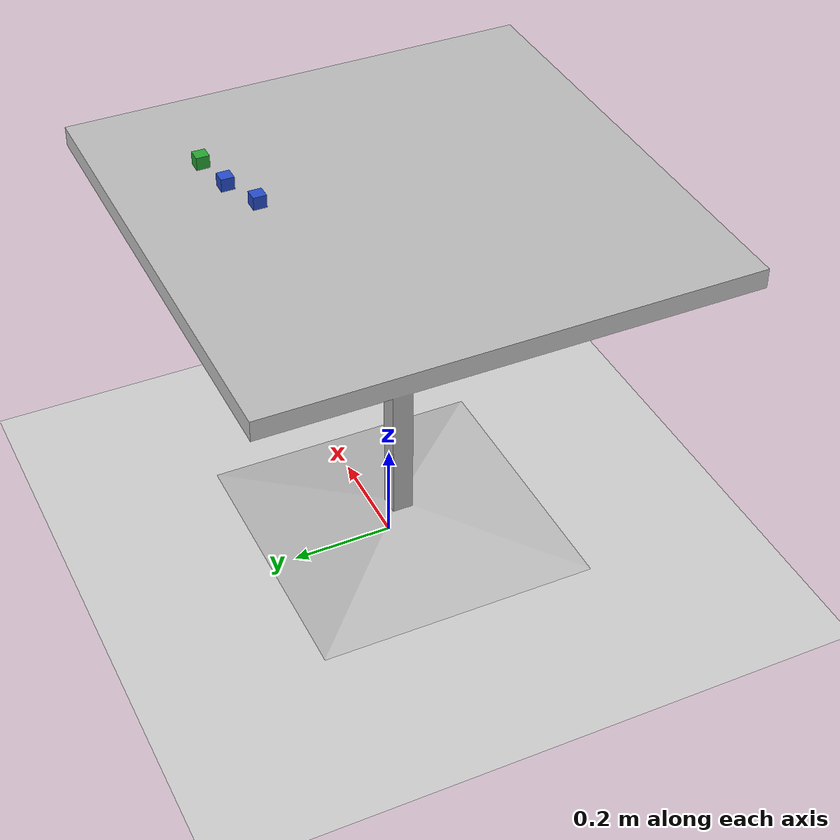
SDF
<sdf version="1.7">
 <world name="default">
  <light name="sun" type="directional">
   <pose>0 0 10 0 -0 0</pose>
   <diffuse>0.8 0.8 0.8 1</diffuse>
   <specular>0.2 0.2 0.2 1</specular>
   <attenuation>
    <range>1000</range>
    <constant>0.9</constant>
    <linear>0.01</linear>
    <quadratic>0.001</quadratic>
   </attenuation>
   <direction>-0.5 0.1 -0.9</direction>
   <spot><inner_angle>0</inner_angle><outer_angle>0</outer_angle><falloff>0</falloff></spot>
  </light>
  <model name="ground_plane">
   <static>1</static>
   <link name="link">
    <collision name="collision">
     <geometry><plane><normal>0 0 1</normal><size>100 100</size></plane></geometry>
     <surface><friction><ode><mu>100</mu><mu2>50</mu2></ode></friction></surface>
    </collision>
    <visual name="visual">
     <cast_shadows>0</cast_shadows>
     <geometry><plane><normal>0 0 1</normal><size>100 100</size></plane></geometry>
     <material>
      <script><uri>file://media/materials/scripts/gazebo.material</uri><name>Gazebo/Grey</name></script>
     </material>
    </visual>
   </link>
  </model>
  <gravity>0 0 -9.8</gravity>
  <magnetic_field>6e-06 2.3e-05 -4.2e-05</magnetic_field>
  <atmosphere type="adiabatic"/>
  <physics type="ode">
   <max_step_size>0.001</max_step_size>
   <real_time_factor>1</real_time_factor>
   <real_time_update_rate>1000</real_time_update_rate>
  </physics>
  <scene><ambient>0.4 0.4 0.4 1</ambient><background>0.7 0.7 0.7 1</background><shadows>1</shadows></scene>
  <spherical_coordinates>
   <surface_model>EARTH_WGS84</surface_model>
   <latitude_deg>0</latitude_deg>
   <longitude_deg>0</longitude_deg>
   <elevation>0</elevation>
   <heading_deg>0</heading_deg>
  </spherical_coordinates>
  <model name="cafe_table">
   <static>1</static>
   <link name="link">
    <collision name="surface">
     <pose>0 0 0.755 0 -0 0</pose>
     <geometry><box><size>0.913 0.913 0.04</size></box></geometry>
    </collision>
    <collision name="column">
     <pose>0 0 0.37 0 -0 0</pose>
     <geometry><box><size>0.042 0.042 0.74</size></box></geometry>
    </collision>
    <collision name="base">
     <pose>0 0 0.02 0 -0 0</pose>
     <geometry><box><size>0.56 0.56 0.04</size></box></geometry>
    </collision>
    <visual name="visual">
     <geometry><mesh><uri>model://cafe_table/meshes/cafe_table.dae</uri></mesh></geometry>
    </visual>
   </link>
   <pose>0.012357 -0.026429 0 0 -0 0</pose>
  </model>
  <model name="blue_cube2">
   <link name="link">
    <inertial>
     <mass>0.03</mass>
     <inertia>
      <ixx>0.00066667</ixx>
      <ixy>0</ixy>
      <ixz>0</ixz>
      <iyy>0.00066667</iyy>
      <iyz>0</iyz>
      <izz>0.00066667</izz>
     </inertia>
    </inertial>
    <pose>0.1 0.158 0.7875 0 -0 0</pose>
    <visual name="visual">
     <geometry><box><size>0.025 0.025 0.025</size></box></geometry>
     <material>
      <script><name>Gazebo/Blue</name><uri>file://media/materials/scripts/gazebo.material</uri></script>
      <shader type="pixel"><normal_map>__default__</normal_map></shader>
      <ambient>0 0 1 1</ambient>
      <diffuse>0 0 1 1</diffuse>
      <specular>0.1 0.1 0.1 1</specular>
      <emissive>0 0 0 1</emissive>
     </material>
    </visual>
    <collision name="collision">
     <geometry><box><size>0.025 0.025 0.025</size></box></geometry>
     <surface>
      <friction>
       <ode><mu>5</mu><mu2>5</mu2><fdir1>0 0 0</fdir1><slip1>0</slip1><slip2>0</slip2></ode>
       <torsional>
        <coefficient>1</coefficient>
        <patch_radius>0</patch_radius>
        <surface_radius>0</surface_radius>
        <use_patch_radius>1</use_patch_radius>
        <ode><slip>0</slip></ode>
       </torsional>
      </friction>
      <bounce><restitution_coefficient>0</restitution_coefficient><threshold>1e+06</threshold></bounce>
      <contact>
       <collide_without_contact>0</collide_without_contact>
       <collide_without_contact_bitmask>1</collide_without_contact_bitmask>
       <collide_bitmask>1</collide_bitmask>
       <ode>
        <soft_cfm>0</soft_cfm>
        <soft_erp>0.2</soft_erp>
        <kp>1e+13</kp>
        <kd>1</kd>
        <max_vel>0.01</max_vel>
        <min_depth>0.001</min_depth>
       </ode>
       <bullet>
        <split_impulse>1</split_impulse>
        <split_impulse_penetration_threshold>-0.01</split_impulse_penetration_threshold>
        <soft_cfm>0</soft_cfm>
        <soft_erp>0.2</soft_erp>
        <kp>1e+13</kp>
        <kd>1</kd>
       </bullet>
      </contact>
     </surface>
    </collision>
   </link>
   <static>0</static>
   <pose>-0.016734 0.048973 -4.3e-05 0.000255 4e-06 -1.9e-05</pose>
  </model>
  <model name="green_cube">
   <link name="link">
    <inertial>
     <mass>0.03</mass>
     <inertia>
      <ixx>0.00066667</ixx>
      <ixy>0</ixy>
      <ixz>0</ixz>
      <iyy>0.00066667</iyy>
      <iyz>0</iyz>
      <izz>0.00066667</izz>
     </inertia>
    </inertial>
    <pose>0.28 0.196 0.787 0 -0 0</pose>
    <visual name="visual">
     <geometry><box><size>0.025 0.025 0.025</size></box></geometry>
     <material>
      <script><name>Gazebo/Green</name><uri>file://media/materials/scripts/gazebo.material</uri></script>
      <shader type="pixel"><normal_map>__default__</normal_map></shader>
      <ambient>0 1 0 1</ambient>
      <diffuse>0 1 0 1</diffuse>
      <specular>0.1 0.1 0.1 1</specular>
      <emissive>0 0 0 1</emissive>
     </material>
    </visual>
    <collision name="collision">
     <geometry><box><size>0.025 0.025 0.025</size></box></geometry>
     <surface>
      <friction>
       <ode><mu>5</mu><mu2>5</mu2><fdir1>0 0 0</fdir1><slip1>0</slip1><slip2>0</slip2></ode>
       <torsional>
        <coefficient>1</coefficient>
        <patch_radius>0</patch_radius>
        <surface_radius>0</surface_radius>
        <use_patch_radius>1</use_patch_radius>
        <ode><slip>0</slip></ode>
       </torsional>
      </friction>
      <bounce><restitution_coefficient>0</restitution_coefficient><threshold>1e+06</threshold></bounce>
      <contact>
       <collide_without_contact>0</collide_without_contact>
       <collide_without_contact_bitmask>1</collide_without_contact_bitmask>
       <collide_bitmask>1</collide_bitmask>
       <ode>
        <soft_cfm>0</soft_cfm>
        <soft_erp>0.2</soft_erp>
        <kp>1e+13</kp>
        <kd>1</kd>
        <max_vel>0.01</max_vel>
        <min_depth>0.001</min_depth>
       </ode>
       <bullet>
        <split_impulse>1</split_impulse>
        <split_impulse_penetration_threshold>-0.01</split_impulse_penetration_threshold>
        <soft_cfm>0</soft_cfm>
        <soft_erp>0.2</soft_erp>
        <kp>1e+13</kp>
        <kd>1</kd>
       </bullet>
      </contact>
     </surface>
    </collision>
   </link>
   <static>0</static>
   <pose>-0.036708 0.058632 -0.00098 0.004841 -0.000465 -1e-05</pose>
  </model>
  <model name="blue_cube2_0">
   <link name="link">
    <inertial>
     <mass>0.03</mass>
     <inertia>
      <ixx>0.00066667</ixx>
      <ixy>0</ixy>
      <ixz>0</ixz>
      <iyy>0.00066667</iyy>
      <iyz>0</iyz>
      <izz>0.00066667</izz>
     </inertia>
    </inertial>
    <pose>0.1 0.158 0.7875 0 -0 0</pose>
    <visual name="visual">
     <geometry><box><size>0.025 0.025 0.025</size></box></geometry>
     <material>
      <script><name>Gazebo/Blue</name><uri>file://media/materials/scripts/gazebo.material</uri></script>
      <shader type="pixel"><normal_map>__default__</normal_map></shader>
      <ambient>0 0 1 1</ambient>
      <diffuse>0 0 1 1</diffuse>
      <specular>0.1 0.1 0.1 1</specular>
      <emissive>0 0 0 1</emissive>
     </material>
    </visual>
    <collision name="collision">
     <geometry><box><size>0.025 0.025 0.025</size></box></geometry>
     <surface>
      <friction>
       <ode><mu>5</mu><mu2>5</mu2><fdir1>0 0 0</fdir1><slip1>0</slip1><slip2>0</slip2></ode>
       <torsional>
        <coefficient>1</coefficient>
        <patch_radius>0</patch_radius>
        <surface_radius>0</surface_radius>
        <use_patch_radius>1</use_patch_radius>
        <ode><slip>0</slip></ode>
       </torsional>
      </friction>
      <bounce><restitution_coefficient>0</restitution_coefficient><threshold>1e+06</threshold></bounce>
      <contact>
       <collide_without_contact>0</collide_without_contact>
       <collide_without_contact_bitmask>1</collide_without_contact_bitmask>
       <collide_bitmask>1</collide_bitmask>
       <ode>
        <soft_cfm>0</soft_cfm>
        <soft_erp>0.2</soft_erp>
        <kp>1e+13</kp>
        <kd>1</kd>
        <max_vel>0.01</max_vel>
        <min_depth>0.001</min_depth>
       </ode>
       <bullet>
        <split_impulse>1</split_impulse>
        <split_impulse_penetration_threshold>-0.01</split_impulse_penetration_threshold>
        <soft_cfm>0</soft_cfm>
        <soft_erp>0.2</soft_erp>
        <kp>1e+13</kp>
        <kd>1</kd>
       </bullet>
      </contact>
     </surface>
    </collision>
   </link>
   <static>0</static>
   <pose>0.05946 0.078277 -5e-06 2.9e-05 4e-06 -4e-06</pose>
  </model>
 </world>
</sdf>
